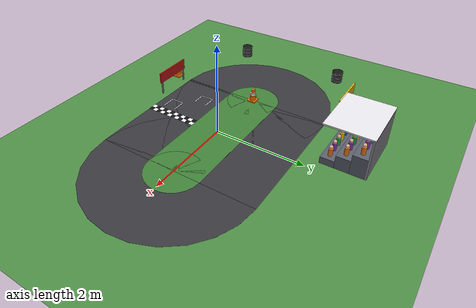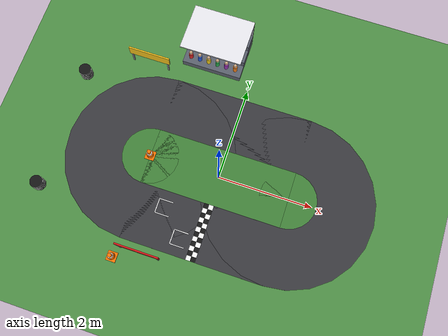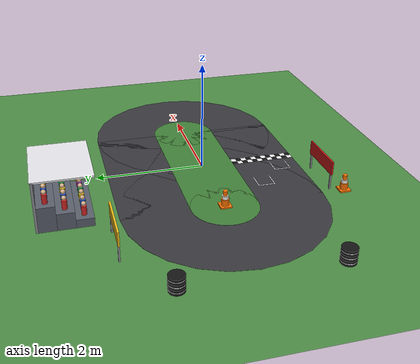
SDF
<sdf version="1.6">
 <world name="apex_circuit">
  <model name="ground_plane">
   <static>true</static>
   <link name="link">
    <collision name="collision">
     <geometry><plane><normal>0 0 1</normal><size>40 40</size></plane></geometry>
     <surface><friction><ode><mu>100</mu><mu2>50</mu2></ode></friction></surface>
    </collision>
    <visual name="visual">
     <geometry><plane><normal>0 0 1</normal><size>40 40</size></plane></geometry>
     <material><ambient>0.3 0.55 0.27 1</ambient><diffuse>0.3 0.55 0.27 1</diffuse></material>
    </visual>
   </link>
  </model>
  <model name="track_surface">
   <static>true</static>
   <link name="link">
    <visual name="asphalt_mid_v">
     <pose>0.0000 0.0000 0.0010 0 0 0.0000</pose>
     <geometry><box><size>3.0000 3.6000 0.0020</size></box></geometry>
     <material><ambient>0.22 0.22 0.24 1</ambient><diffuse>0.22 0.22 0.24 1</diffuse></material>
    </visual>
    <visual name="asphalt_e_v">
     <pose>1.5000 0.0000 0.0010 0 0 0.0000</pose>
     <geometry><cylinder><radius>1.8000</radius><length>0.0020</length></cylinder></geometry>
     <material><ambient>0.22 0.22 0.24 1</ambient><diffuse>0.22 0.22 0.24 1</diffuse></material>
    </visual>
    <visual name="asphalt_w_v">
     <pose>-1.5000 0.0000 0.0010 0 0 0.0000</pose>
     <geometry><cylinder><radius>1.8000</radius><length>0.0020</length></cylinder></geometry>
     <material><ambient>0.22 0.22 0.24 1</ambient><diffuse>0.22 0.22 0.24 1</diffuse></material>
    </visual>
    <visual name="infield_mid_v">
     <pose>0.0000 0.0000 0.0030 0 0 0.0000</pose>
     <geometry><box><size>3.0000 1.2000 0.0020</size></box></geometry>
     <material><ambient>0.25 0.5 0.22 1</ambient><diffuse>0.25 0.5 0.22 1</diffuse></material>
    </visual>
    <visual name="infield_e_v">
     <pose>1.5000 0.0000 0.0030 0 0 0.0000</pose>
     <geometry><cylinder><radius>0.6000</radius><length>0.0020</length></cylinder></geometry>
     <material><ambient>0.25 0.5 0.22 1</ambient><diffuse>0.25 0.5 0.22 1</diffuse></material>
    </visual>
    <visual name="infield_w_v">
     <pose>-1.5000 0.0000 0.0030 0 0 0.0000</pose>
     <geometry><cylinder><radius>0.6000</radius><length>0.0020</length></cylinder></geometry>
     <material><ambient>0.25 0.5 0.22 1</ambient><diffuse>0.25 0.5 0.22 1</diffuse></material>
    </visual>
    <visual name="line_0_0_v">
     <pose>-0.0500 -1.7500 0.0040 0 0 0.0000</pose>
     <geometry><box><size>0.1000 0.1000 0.0020</size></box></geometry>
     <material><ambient>0.95 0.95 0.95 1</ambient><diffuse>0.95 0.95 0.95 1</diffuse></material>
    </visual>
    <visual name="line_0_1_v">
     <pose>0.0500 -1.7500 0.0040 0 0 0.0000</pose>
     <geometry><box><size>0.1000 0.1000 0.0020</size></box></geometry>
     <material><ambient>0.08 0.08 0.08 1</ambient><diffuse>0.08 0.08 0.08 1</diffuse></material>
    </visual>
    <visual name="line_1_0_v">
     <pose>-0.0500 -1.6500 0.0040 0 0 0.0000</pose>
     <geometry><box><size>0.1000 0.1000 0.0020</size></box></geometry>
     <material><ambient>0.08 0.08 0.08 1</ambient><diffuse>0.08 0.08 0.08 1</diffuse></material>
    </visual>
    <visual name="line_1_1_v">
     <pose>0.0500 -1.6500 0.0040 0 0 0.0000</pose>
     <geometry><box><size>0.1000 0.1000 0.0020</size></box></geometry>
     <material><ambient>0.95 0.95 0.95 1</ambient><diffuse>0.95 0.95 0.95 1</diffuse></material>
    </visual>
    <visual name="line_2_0_v">
     <pose>-0.0500 -1.5500 0.0040 0 0 0.0000</pose>
     <geometry><box><size>0.1000 0.1000 0.0020</size></box></geometry>
     <material><ambient>0.95 0.95 0.95 1</ambient><diffuse>0.95 0.95 0.95 1</diffuse></material>
    </visual>
    <visual name="line_2_1_v">
     <pose>0.0500 -1.5500 0.0040 0 0 0.0000</pose>
     <geometry><box><size>0.1000 0.1000 0.0020</size></box></geometry>
     <material><ambient>0.08 0.08 0.08 1</ambient><diffuse>0.08 0.08 0.08 1</diffuse></material>
    </visual>
    <visual name="line_3_0_v">
     <pose>-0.0500 -1.4500 0.0040 0 0 0.0000</pose>
     <geometry><box><size>0.1000 0.1000 0.0020</size></box></geometry>
     <material><ambient>0.08 0.08 0.08 1</ambient><diffuse>0.08 0.08 0.08 1</diffuse></material>
    </visual>
    <visual name="line_3_1_v">
     <pose>0.0500 -1.4500 0.0040 0 0 0.0000</pose>
     <geometry><box><size>0.1000 0.1000 0.0020</size></box></geometry>
     <material><ambient>0.95 0.95 0.95 1</ambient><diffuse>0.95 0.95 0.95 1</diffuse></material>
    </visual>
    <visual name="line_4_0_v">
     <pose>-0.0500 -1.3500 0.0040 0 0 0.0000</pose>
     <geometry><box><size>0.1000 0.1000 0.0020</size></box></geometry>
     <material><ambient>0.95 0.95 0.95 1</ambient><diffuse>0.95 0.95 0.95 1</diffuse></material>
    </visual>
    <visual name="line_4_1_v">
     <pose>0.0500 -1.3500 0.0040 0 0 0.0000</pose>
     <geometry><box><size>0.1000 0.1000 0.0020</size></box></geometry>
     <material><ambient>0.08 0.08 0.08 1</ambient><diffuse>0.08 0.08 0.08 1</diffuse></material>
    </visual>
    <visual name="line_5_0_v">
     <pose>-0.0500 -1.2500 0.0040 0 0 0.0000</pose>
     <geometry><box><size>0.1000 0.1000 0.0020</size></box></geometry>
     <material><ambient>0.08 0.08 0.08 1</ambient><diffuse>0.08 0.08 0.08 1</diffuse></material>
    </visual>
    <visual name="line_5_1_v">
     <pose>0.0500 -1.2500 0.0040 0 0 0.0000</pose>
     <geometry><box><size>0.1000 0.1000 0.0020</size></box></geometry>
     <material><ambient>0.95 0.95 0.95 1</ambient><diffuse>0.95 0.95 0.95 1</diffuse></material>
    </visual>
    <visual name="line_6_0_v">
     <pose>-0.0500 -1.1500 0.0040 0 0 0.0000</pose>
     <geometry><box><size>0.1000 0.1000 0.0020</size></box></geometry>
     <material><ambient>0.95 0.95 0.95 1</ambient><diffuse>0.95 0.95 0.95 1</diffuse></material>
    </visual>
    <visual name="line_6_1_v">
     <pose>0.0500 -1.1500 0.0040 0 0 0.0000</pose>
     <geometry><box><size>0.1000 0.1000 0.0020</size></box></geometry>
     <material><ambient>0.08 0.08 0.08 1</ambient><diffuse>0.08 0.08 0.08 1</diffuse></material>
    </visual>
    <visual name="line_7_0_v">
     <pose>-0.0500 -1.0500 0.0040 0 0 0.0000</pose>
     <geometry><box><size>0.1000 0.1000 0.0020</size></box></geometry>
     <material><ambient>0.08 0.08 0.08 1</ambient><diffuse>0.08 0.08 0.08 1</diffuse></material>
    </visual>
    <visual name="line_7_1_v">
     <pose>0.0500 -1.0500 0.0040 0 0 0.0000</pose>
     <geometry><box><size>0.1000 0.1000 0.0020</size></box></geometry>
     <material><ambient>0.95 0.95 0.95 1</ambient><diffuse>0.95 0.95 0.95 1</diffuse></material>
    </visual>
    <visual name="line_8_0_v">
     <pose>-0.0500 -0.9500 0.0040 0 0 0.0000</pose>
     <geometry><box><size>0.1000 0.1000 0.0020</size></box></geometry>
     <material><ambient>0.95 0.95 0.95 1</ambient><diffuse>0.95 0.95 0.95 1</diffuse></material>
    </visual>
    <visual name="line_8_1_v">
     <pose>0.0500 -0.9500 0.0040 0 0 0.0000</pose>
     <geometry><box><size>0.1000 0.1000 0.0020</size></box></geometry>
     <material><ambient>0.08 0.08 0.08 1</ambient><diffuse>0.08 0.08 0.08 1</diffuse></material>
    </visual>
    <visual name="line_9_0_v">
     <pose>-0.0500 -0.8500 0.0040 0 0 0.0000</pose>
     <geometry><box><size>0.1000 0.1000 0.0020</size></box></geometry>
     <material><ambient>0.08 0.08 0.08 1</ambient><diffuse>0.08 0.08 0.08 1</diffuse></material>
    </visual>
    <visual name="line_9_1_v">
     <pose>0.0500 -0.8500 0.0040 0 0 0.0000</pose>
     <geometry><box><size>0.1000 0.1000 0.0020</size></box></geometry>
     <material><ambient>0.95 0.95 0.95 1</ambient><diffuse>0.95 0.95 0.95 1</diffuse></material>
    </visual>
    <visual name="line_10_0_v">
     <pose>-0.0500 -0.7500 0.0040 0 0 0.0000</pose>
     <geometry><box><size>0.1000 0.1000 0.0020</size></box></geometry>
     <material><ambient>0.95 0.95 0.95 1</ambient><diffuse>0.95 0.95 0.95 1</diffuse></material>
    </visual>
    <visual name="line_10_1_v">
     <pose>0.0500 -0.7500 0.0040 0 0 0.0000</pose>
     <geometry><box><size>0.1000 0.1000 0.0020</size></box></geometry>
     <material><ambient>0.08 0.08 0.08 1</ambient><diffuse>0.08 0.08 0.08 1</diffuse></material>
    </visual>
    <visual name="line_11_0_v">
     <pose>-0.0500 -0.6500 0.0040 0 0 0.0000</pose>
     <geometry><box><size>0.1000 0.1000 0.0020</size></box></geometry>
     <material><ambient>0.08 0.08 0.08 1</ambient><diffuse>0.08 0.08 0.08 1</diffuse></material>
    </visual>
    <visual name="line_11_1_v">
     <pose>0.0500 -0.6500 0.0040 0 0 0.0000</pose>
     <geometry><box><size>0.1000 0.1000 0.0020</size></box></geometry>
     <material><ambient>0.95 0.95 0.95 1</ambient><diffuse>0.95 0.95 0.95 1</diffuse></material>
    </visual>
    <visual name="grid_auto_back_v">
     <pose>-0.5000 -1.4500 0.0040 0 0 0.0000</pose>
     <geometry><box><size>0.0200 0.3000 0.0020</size></box></geometry>
     <material><ambient>0.95 0.95 0.95 1</ambient><diffuse>0.95 0.95 0.95 1</diffuse></material>
    </visual>
    <visual name="grid_auto_-1_v">
     <pose>-0.3500 -1.6000 0.0040 0 0 0.0000</pose>
     <geometry><box><size>0.3000 0.0200 0.0020</size></box></geometry>
     <material><ambient>0.95 0.95 0.95 1</ambient><diffuse>0.95 0.95 0.95 1</diffuse></material>
    </visual>
    <visual name="grid_auto_1_v">
     <pose>-0.3500 -1.3000 0.0040 0 0 0.0000</pose>
     <geometry><box><size>0.3000 0.0200 0.0020</size></box></geometry>
     <material><ambient>0.95 0.95 0.95 1</ambient><diffuse>0.95 0.95 0.95 1</diffuse></material>
    </visual>
    <visual name="grid_player_back_v">
     <pose>-1.0000 -0.9500 0.0040 0 0 0.0000</pose>
     <geometry><box><size>0.0200 0.3000 0.0020</size></box></geometry>
     <material><ambient>0.95 0.95 0.95 1</ambient><diffuse>0.95 0.95 0.95 1</diffuse></material>
    </visual>
    <visual name="grid_player_-1_v">
     <pose>-0.8500 -1.1000 0.0040 0 0 0.0000</pose>
     <geometry><box><size>0.3000 0.0200 0.0020</size></box></geometry>
     <material><ambient>0.95 0.95 0.95 1</ambient><diffuse>0.95 0.95 0.95 1</diffuse></material>
    </visual>
    <visual name="grid_player_1_v">
     <pose>-0.8500 -0.8000 0.0040 0 0 0.0000</pose>
     <geometry><box><size>0.3000 0.0200 0.0020</size></box></geometry>
     <material><ambient>0.95 0.95 0.95 1</ambient><diffuse>0.95 0.95 0.95 1</diffuse></material>
    </visual>
   </link>
  </model>
  <model name="grandstand_0">
   <static>true</static>
   <pose>-0.9000 0.0000 0 0 0 0.0000</pose>
   <link name="link">
    <visual name="row_0_v">
     <pose>0.0000 2.3500 0.0750 0 0 0.0000</pose>
     <geometry><box><size>1.3000 0.3000 0.1500</size></box></geometry>
     <material><ambient>0.35 0.37 0.42 1</ambient><diffuse>0.35 0.37 0.42 1</diffuse></material>
    </visual>
    <collision name="row_0_c">
     <pose>0.0000 2.3500 0.0750 0 0 0.0000</pose>
     <geometry><box><size>1.3000 0.3000 0.1500</size></box></geometry>
    </collision>
    <visual name="fan_0_0_body_v">
     <pose>-0.5000 2.3500 0.2300 0 0 0.0000</pose>
     <geometry><cylinder><radius>0.0450</radius><length>0.1600</length></cylinder></geometry>
     <material><ambient>0.85 0.15 0.15 1</ambient><diffuse>0.85 0.15 0.15 1</diffuse></material>
    </visual>
    <visual name="fan_0_0_head_v">
     <pose>-0.5000 2.3500 0.3500 0 0 0.0000</pose>
     <geometry><sphere><radius>0.0400</radius></sphere></geometry>
     <material><ambient>0.85 0.7 0.55 1</ambient><diffuse>0.85 0.7 0.55 1</diffuse></material>
    </visual>
    <visual name="fan_0_1_body_v">
     <pose>-0.3000 2.3500 0.2300 0 0 0.0000</pose>
     <geometry><cylinder><radius>0.0450</radius><length>0.1600</length></cylinder></geometry>
     <material><ambient>0.15 0.35 0.85 1</ambient><diffuse>0.15 0.35 0.85 1</diffuse></material>
    </visual>
    <visual name="fan_0_1_head_v">
     <pose>-0.3000 2.3500 0.3500 0 0 0.0000</pose>
     <geometry><sphere><radius>0.0400</radius></sphere></geometry>
     <material><ambient>0.85 0.7 0.55 1</ambient><diffuse>0.85 0.7 0.55 1</diffuse></material>
    </visual>
    <visual name="fan_0_2_body_v">
     <pose>-0.1000 2.3500 0.2300 0 0 0.0000</pose>
     <geometry><cylinder><radius>0.0450</radius><length>0.1600</length></cylinder></geometry>
     <material><ambient>0.95 0.8 0.1 1</ambient><diffuse>0.95 0.8 0.1 1</diffuse></material>
    </visual>
    <visual name="fan_0_2_head_v">
     <pose>-0.1000 2.3500 0.3500 0 0 0.0000</pose>
     <geometry><sphere><radius>0.0400</radius></sphere></geometry>
     <material><ambient>0.85 0.7 0.55 1</ambient><diffuse>0.85 0.7 0.55 1</diffuse></material>
    </visual>
    <visual name="fan_0_3_body_v">
     <pose>0.1000 2.3500 0.2300 0 0 0.0000</pose>
     <geometry><cylinder><radius>0.0450</radius><length>0.1600</length></cylinder></geometry>
     <material><ambient>0.15 0.65 0.3 1</ambient><diffuse>0.15 0.65 0.3 1</diffuse></material>
    </visual>
    <visual name="fan_0_3_head_v">
     <pose>0.1000 2.3500 0.3500 0 0 0.0000</pose>
     <geometry><sphere><radius>0.0400</radius></sphere></geometry>
     <material><ambient>0.85 0.7 0.55 1</ambient><diffuse>0.85 0.7 0.55 1</diffuse></material>
    </visual>
    <visual name="fan_0_4_body_v">
     <pose>0.3000 2.3500 0.2300 0 0 0.0000</pose>
     <geometry><cylinder><radius>0.0450</radius><length>0.1600</length></cylinder></geometry>
     <material><ambient>0.6 0.2 0.7 1</ambient><diffuse>0.6 0.2 0.7 1</diffuse></material>
    </visual>
    <visual name="fan_0_4_head_v">
     <pose>0.3000 2.3500 0.3500 0 0 0.0000</pose>
     <geometry><sphere><radius>0.0400</radius></sphere></geometry>
     <material><ambient>0.85 0.7 0.55 1</ambient><diffuse>0.85 0.7 0.55 1</diffuse></material>
    </visual>
    <visual name="fan_0_5_body_v">
     <pose>0.5000 2.3500 0.2300 0 0 0.0000</pose>
     <geometry><cylinder><radius>0.0450</radius><length>0.1600</length></cylinder></geometry>
     <material><ambient>0.95 0.5 0.1 1</ambient><diffuse>0.95 0.5 0.1 1</diffuse></material>
    </visual>
    <visual name="fan_0_5_head_v">
     <pose>0.5000 2.3500 0.3500 0 0 0.0000</pose>
     <geometry><sphere><radius>0.0400</radius></sphere></geometry>
     <material><ambient>0.85 0.7 0.55 1</ambient><diffuse>0.85 0.7 0.55 1</diffuse></material>
    </visual>
    <visual name="row_1_v">
     <pose>0.0000 2.6500 0.1500 0 0 0.0000</pose>
     <geometry><box><size>1.3000 0.3000 0.3000</size></box></geometry>
     <material><ambient>0.35 0.37 0.42 1</ambient><diffuse>0.35 0.37 0.42 1</diffuse></material>
    </visual>
    <collision name="row_1_c">
     <pose>0.0000 2.6500 0.1500 0 0 0.0000</pose>
     <geometry><box><size>1.3000 0.3000 0.3000</size></box></geometry>
    </collision>
    <visual name="fan_1_0_body_v">
     <pose>-0.5000 2.6500 0.3800 0 0 0.0000</pose>
     <geometry><cylinder><radius>0.0450</radius><length>0.1600</length></cylinder></geometry>
     <material><ambient>0.85 0.15 0.15 1</ambient><diffuse>0.85 0.15 0.15 1</diffuse></material>
    </visual>
    <visual name="fan_1_0_head_v">
     <pose>-0.5000 2.6500 0.5000 0 0 0.0000</pose>
     <geometry><sphere><radius>0.0400</radius></sphere></geometry>
     <material><ambient>0.85 0.7 0.55 1</ambient><diffuse>0.85 0.7 0.55 1</diffuse></material>
    </visual>
    <visual name="fan_1_1_body_v">
     <pose>-0.3000 2.6500 0.3800 0 0 0.0000</pose>
     <geometry><cylinder><radius>0.0450</radius><length>0.1600</length></cylinder></geometry>
     <material><ambient>0.15 0.35 0.85 1</ambient><diffuse>0.15 0.35 0.85 1</diffuse></material>
    </visual>
    <visual name="fan_1_1_head_v">
     <pose>-0.3000 2.6500 0.5000 0 0 0.0000</pose>
     <geometry><sphere><radius>0.0400</radius></sphere></geometry>
     <material><ambient>0.85 0.7 0.55 1</ambient><diffuse>0.85 0.7 0.55 1</diffuse></material>
    </visual>
    <visual name="fan_1_2_body_v">
     <pose>-0.1000 2.6500 0.3800 0 0 0.0000</pose>
     <geometry><cylinder><radius>0.0450</radius><length>0.1600</length></cylinder></geometry>
     <material><ambient>0.95 0.8 0.1 1</ambient><diffuse>0.95 0.8 0.1 1</diffuse></material>
    </visual>
    <visual name="fan_1_2_head_v">
     <pose>-0.1000 2.6500 0.5000 0 0 0.0000</pose>
     <geometry><sphere><radius>0.0400</radius></sphere></geometry>
     <material><ambient>0.85 0.7 0.55 1</ambient><diffuse>0.85 0.7 0.55 1</diffuse></material>
    </visual>
    <visual name="fan_1_3_body_v">
     <pose>0.1000 2.6500 0.3800 0 0 0.0000</pose>
     <geometry><cylinder><radius>0.0450</radius><length>0.1600</length></cylinder></geometry>
     <material><ambient>0.15 0.65 0.3 1</ambient><diffuse>0.15 0.65 0.3 1</diffuse></material>
    </visual>
    <visual name="fan_1_3_head_v">
     <pose>0.1000 2.6500 0.5000 0 0 0.0000</pose>
     <geometry><sphere><radius>0.0400</radius></sphere></geometry>
     <material><ambient>0.85 0.7 0.55 1</ambient><diffuse>0.85 0.7 0.55 1</diffuse></material>
    </visual>
    <visual name="fan_1_4_body_v">
     <pose>0.3000 2.6500 0.3800 0 0 0.0000</pose>
     <geometry><cylinder><radius>0.0450</radius><length>0.1600</length></cylinder></geometry>
     <material><ambient>0.6 0.2 0.7 1</ambient><diffuse>0.6 0.2 0.7 1</diffuse></material>
    </visual>
    <visual name="fan_1_4_head_v">
     <pose>0.3000 2.6500 0.5000 0 0 0.0000</pose>
     <geometry><sphere><radius>0.0400</radius></sphere></geometry>
     <material><ambient>0.85 0.7 0.55 1</ambient><diffuse>0.85 0.7 0.55 1</diffuse></material>
    </visual>
    <visual name="fan_1_5_body_v">
     <pose>0.5000 2.6500 0.3800 0 0 0.0000</pose>
     <geometry><cylinder><radius>0.0450</radius><length>0.1600</length></cylinder></geometry>
     <material><ambient>0.95 0.5 0.1 1</ambient><diffuse>0.95 0.5 0.1 1</diffuse></material>
    </visual>
    <visual name="fan_1_5_head_v">
     <pose>0.5000 2.6500 0.5000 0 0 0.0000</pose>
     <geometry><sphere><radius>0.0400</radius></sphere></geometry>
     <material><ambient>0.85 0.7 0.55 1</ambient><diffuse>0.85 0.7 0.55 1</diffuse></material>
    </visual>
    <visual name="row_2_v">
     <pose>0.0000 2.9500 0.2250 0 0 0.0000</pose>
     <geometry><box><size>1.3000 0.3000 0.4500</size></box></geometry>
     <material><ambient>0.35 0.37 0.42 1</ambient><diffuse>0.35 0.37 0.42 1</diffuse></material>
    </visual>
    <collision name="row_2_c">
     <pose>0.0000 2.9500 0.2250 0 0 0.0000</pose>
     <geometry><box><size>1.3000 0.3000 0.4500</size></box></geometry>
    </collision>
    <visual name="fan_2_0_body_v">
     <pose>-0.5000 2.9500 0.5300 0 0 0.0000</pose>
     <geometry><cylinder><radius>0.0450</radius><length>0.1600</length></cylinder></geometry>
     <material><ambient>0.85 0.15 0.15 1</ambient><diffuse>0.85 0.15 0.15 1</diffuse></material>
    </visual>
    <visual name="fan_2_0_head_v">
     <pose>-0.5000 2.9500 0.6500 0 0 0.0000</pose>
     <geometry><sphere><radius>0.0400</radius></sphere></geometry>
     <material><ambient>0.85 0.7 0.55 1</ambient><diffuse>0.85 0.7 0.55 1</diffuse></material>
    </visual>
    <visual name="fan_2_1_body_v">
     <pose>-0.3000 2.9500 0.5300 0 0 0.0000</pose>
     <geometry><cylinder><radius>0.0450</radius><length>0.1600</length></cylinder></geometry>
     <material><ambient>0.15 0.35 0.85 1</ambient><diffuse>0.15 0.35 0.85 1</diffuse></material>
    </visual>
    <visual name="fan_2_1_head_v">
     <pose>-0.3000 2.9500 0.6500 0 0 0.0000</pose>
     <geometry><sphere><radius>0.0400</radius></sphere></geometry>
     <material><ambient>0.85 0.7 0.55 1</ambient><diffuse>0.85 0.7 0.55 1</diffuse></material>
    </visual>
    <visual name="fan_2_2_body_v">
     <pose>-0.1000 2.9500 0.5300 0 0 0.0000</pose>
     <geometry><cylinder><radius>0.0450</radius><length>0.1600</length></cylinder></geometry>
     <material><ambient>0.95 0.8 0.1 1</ambient><diffuse>0.95 0.8 0.1 1</diffuse></material>
    </visual>
    <visual name="fan_2_2_head_v">
     <pose>-0.1000 2.9500 0.6500 0 0 0.0000</pose>
     <geometry><sphere><radius>0.0400</radius></sphere></geometry>
     <material><ambient>0.85 0.7 0.55 1</ambient><diffuse>0.85 0.7 0.55 1</diffuse></material>
    </visual>
    <visual name="fan_2_3_body_v">
     <pose>0.1000 2.9500 0.5300 0 0 0.0000</pose>
     <geometry><cylinder><radius>0.0450</radius><length>0.1600</length></cylinder></geometry>
     <material><ambient>0.15 0.65 0.3 1</ambient><diffuse>0.15 0.65 0.3 1</diffuse></material>
    </visual>
    <visual name="fan_2_3_head_v">
     <pose>0.1000 2.9500 0.6500 0 0 0.0000</pose>
     <geometry><sphere><radius>0.0400</radius></sphere></geometry>
     <material><ambient>0.85 0.7 0.55 1</ambient><diffuse>0.85 0.7 0.55 1</diffuse></material>
    </visual>
    <visual name="fan_2_4_body_v">
     <pose>0.3000 2.9500 0.5300 0 0 0.0000</pose>
     <geometry><cylinder><radius>0.0450</radius><length>0.1600</length></cylinder></geometry>
     <material><ambient>0.6 0.2 0.7 1</ambient><diffuse>0.6 0.2 0.7 1</diffuse></material>
    </visual>
    <visual name="fan_2_4_head_v">
     <pose>0.3000 2.9500 0.6500 0 0 0.0000</pose>
     <geometry><sphere><radius>0.0400</radius></sphere></geometry>
     <material><ambient>0.85 0.7 0.55 1</ambient><diffuse>0.85 0.7 0.55 1</diffuse></material>
    </visual>
    <visual name="fan_2_5_body_v">
     <pose>0.5000 2.9500 0.5300 0 0 0.0000</pose>
     <geometry><cylinder><radius>0.0450</radius><length>0.1600</length></cylinder></geometry>
     <material><ambient>0.95 0.5 0.1 1</ambient><diffuse>0.95 0.5 0.1 1</diffuse></material>
    </visual>
    <visual name="fan_2_5_head_v">
     <pose>0.5000 2.9500 0.6500 0 0 0.0000</pose>
     <geometry><sphere><radius>0.0400</radius></sphere></geometry>
     <material><ambient>0.85 0.7 0.55 1</ambient><diffuse>0.85 0.7 0.55 1</diffuse></material>
    </visual>
    <visual name="back_v">
     <pose>0.0000 3.1200 0.4500 0 0 0.0000</pose>
     <geometry><box><size>1.3000 0.0400 0.9000</size></box></geometry>
     <material><ambient>0.55 0.55 0.58 1</ambient><diffuse>0.55 0.55 0.58 1</diffuse></material>
    </visual>
    <collision name="back_c">
     <pose>0.0000 3.1200 0.4500 0 0 0.0000</pose>
     <geometry><box><size>1.3000 0.0400 0.9000</size></box></geometry>
    </collision>
    <visual name="roof_v">
     <pose>0.0000 2.6500 0.9000 0 0 0.0000</pose>
     <geometry><box><size>1.3000 1.0000 0.0300</size></box></geometry>
     <material><ambient>0.9 0.9 0.92 1</ambient><diffuse>0.9 0.9 0.92 1</diffuse></material>
    </visual>
    <collision name="roof_c">
     <pose>0.0000 2.6500 0.9000 0 0 0.0000</pose>
     <geometry><box><size>1.3000 1.0000 0.0300</size></box></geometry>
    </collision>
   </link>
  </model>
  <model name="banner_0">
   <static>true</static>
   <pose>-1.0000 -1.9700 0 0 0 0.0000</pose>
   <link name="link">
    <visual name="board_v">
     <pose>0.0000 0.0000 0.4200 0 0 0.0000</pose>
     <geometry><box><size>0.9000 0.0300 0.2500</size></box></geometry>
     <material><ambient>0.85 0.1 0.1 1</ambient><diffuse>0.85 0.1 0.1 1</diffuse></material>
    </visual>
    <collision name="board_c">
     <pose>0.0000 0.0000 0.4200 0 0 0.0000</pose>
     <geometry><box><size>0.9000 0.0300 0.2500</size></box></geometry>
    </collision>
    <visual name="leg_a_v">
     <pose>-0.4000 0.0000 0.1500 0 0 0.0000</pose>
     <geometry><box><size>0.0300 0.0300 0.3000</size></box></geometry>
     <material><ambient>0.55 0.55 0.58 1</ambient><diffuse>0.55 0.55 0.58 1</diffuse></material>
    </visual>
    <collision name="leg_a_c">
     <pose>-0.4000 0.0000 0.1500 0 0 0.0000</pose>
     <geometry><box><size>0.0300 0.0300 0.3000</size></box></geometry>
    </collision>
    <visual name="leg_b_v">
     <pose>0.4000 0.0000 0.1500 0 0 0.0000</pose>
     <geometry><box><size>0.0300 0.0300 0.3000</size></box></geometry>
     <material><ambient>0.55 0.55 0.58 1</ambient><diffuse>0.55 0.55 0.58 1</diffuse></material>
    </visual>
    <collision name="leg_b_c">
     <pose>0.4000 0.0000 0.1500 0 0 0.0000</pose>
     <geometry><box><size>0.0300 0.0300 0.3000</size></box></geometry>
    </collision>
   </link>
  </model>
  <model name="banner_2">
   <static>true</static>
   <pose>-2.2000 1.9700 0 0 0 0.0000</pose>
   <link name="link">
    <visual name="board_v">
     <pose>0.0000 0.0000 0.4200 0 0 0.0000</pose>
     <geometry><box><size>0.9000 0.0300 0.2500</size></box></geometry>
     <material><ambient>0.95 0.75 0.1 1</ambient><diffuse>0.95 0.75 0.1 1</diffuse></material>
    </visual>
    <collision name="board_c">
     <pose>0.0000 0.0000 0.4200 0 0 0.0000</pose>
     <geometry><box><size>0.9000 0.0300 0.2500</size></box></geometry>
    </collision>
    <visual name="leg_a_v">
     <pose>-0.4000 0.0000 0.1500 0 0 0.0000</pose>
     <geometry><box><size>0.0300 0.0300 0.3000</size></box></geometry>
     <material><ambient>0.55 0.55 0.58 1</ambient><diffuse>0.55 0.55 0.58 1</diffuse></material>
    </visual>
    <collision name="leg_a_c">
     <pose>-0.4000 0.0000 0.1500 0 0 0.0000</pose>
     <geometry><box><size>0.0300 0.0300 0.3000</size></box></geometry>
    </collision>
    <visual name="leg_b_v">
     <pose>0.4000 0.0000 0.1500 0 0 0.0000</pose>
     <geometry><box><size>0.0300 0.0300 0.3000</size></box></geometry>
     <material><ambient>0.55 0.55 0.58 1</ambient><diffuse>0.55 0.55 0.58 1</diffuse></material>
    </visual>
    <collision name="leg_b_c">
     <pose>0.4000 0.0000 0.1500 0 0 0.0000</pose>
     <geometry><box><size>0.0300 0.0300 0.3000</size></box></geometry>
    </collision>
   </link>
  </model>
  <model name="cone_0">
   <static>true</static>
   <pose>-1.5000 0.0000 0 0 0 0.0000</pose>
   <link name="link">
    <visual name="cone0_base_v">
     <pose>0.0000 0.0000 0.0150 0 0 0.0000</pose>
     <geometry><box><size>0.2000 0.2000 0.0300</size></box></geometry>
     <material><ambient>1.0 0.45 0.0 1</ambient><diffuse>1.0 0.45 0.0 1</diffuse></material>
    </visual>
    <collision name="cone0_base_c">
     <pose>0.0000 0.0000 0.0150 0 0 0.0000</pose>
     <geometry><box><size>0.2000 0.2000 0.0300</size></box></geometry>
    </collision>
    <visual name="cone0_low_v">
     <pose>0.0000 0.0000 0.0900 0 0 0.0000</pose>
     <geometry><cylinder><radius>0.0700</radius><length>0.1200</length></cylinder></geometry>
     <material><ambient>1.0 0.45 0.0 1</ambient><diffuse>1.0 0.45 0.0 1</diffuse></material>
    </visual>
    <collision name="cone0_low_c">
     <pose>0.0000 0.0000 0.0900 0 0 0.0000</pose>
     <geometry><cylinder><radius>0.0700</radius><length>0.1200</length></cylinder></geometry>
    </collision>
    <visual name="cone0_band_v">
     <pose>0.0000 0.0000 0.1800 0 0 0.0000</pose>
     <geometry><cylinder><radius>0.0550</radius><length>0.0600</length></cylinder></geometry>
     <material><ambient>0.95 0.95 0.95 1</ambient><diffuse>0.95 0.95 0.95 1</diffuse></material>
    </visual>
    <collision name="cone0_band_c">
     <pose>0.0000 0.0000 0.1800 0 0 0.0000</pose>
     <geometry><cylinder><radius>0.0550</radius><length>0.0600</length></cylinder></geometry>
    </collision>
    <visual name="cone0_top_v">
     <pose>0.0000 0.0000 0.2550 0 0 0.0000</pose>
     <geometry><cylinder><radius>0.0400</radius><length>0.0900</length></cylinder></geometry>
     <material><ambient>1.0 0.45 0.0 1</ambient><diffuse>1.0 0.45 0.0 1</diffuse></material>
    </visual>
    <collision name="cone0_top_c">
     <pose>0.0000 0.0000 0.2550 0 0 0.0000</pose>
     <geometry><cylinder><radius>0.0400</radius><length>0.0900</length></cylinder></geometry>
    </collision>
   </link>
  </model>
  <model name="cone_2">
   <static>true</static>
   <pose>-1.5000 -2.2000 0 0 0 0.0000</pose>
   <link name="link">
    <visual name="cone2_base_v">
     <pose>0.0000 0.0000 0.0150 0 0 0.0000</pose>
     <geometry><box><size>0.2000 0.2000 0.0300</size></box></geometry>
     <material><ambient>1.0 0.45 0.0 1</ambient><diffuse>1.0 0.45 0.0 1</diffuse></material>
    </visual>
    <collision name="cone2_base_c">
     <pose>0.0000 0.0000 0.0150 0 0 0.0000</pose>
     <geometry><box><size>0.2000 0.2000 0.0300</size></box></geometry>
    </collision>
    <visual name="cone2_low_v">
     <pose>0.0000 0.0000 0.0900 0 0 0.0000</pose>
     <geometry><cylinder><radius>0.0700</radius><length>0.1200</length></cylinder></geometry>
     <material><ambient>1.0 0.45 0.0 1</ambient><diffuse>1.0 0.45 0.0 1</diffuse></material>
    </visual>
    <collision name="cone2_low_c">
     <pose>0.0000 0.0000 0.0900 0 0 0.0000</pose>
     <geometry><cylinder><radius>0.0700</radius><length>0.1200</length></cylinder></geometry>
    </collision>
    <visual name="cone2_band_v">
     <pose>0.0000 0.0000 0.1800 0 0 0.0000</pose>
     <geometry><cylinder><radius>0.0550</radius><length>0.0600</length></cylinder></geometry>
     <material><ambient>0.95 0.95 0.95 1</ambient><diffuse>0.95 0.95 0.95 1</diffuse></material>
    </visual>
    <collision name="cone2_band_c">
     <pose>0.0000 0.0000 0.1800 0 0 0.0000</pose>
     <geometry><cylinder><radius>0.0550</radius><length>0.0600</length></cylinder></geometry>
    </collision>
    <visual name="cone2_top_v">
     <pose>0.0000 0.0000 0.2550 0 0 0.0000</pose>
     <geometry><cylinder><radius>0.0400</radius><length>0.0900</length></cylinder></geometry>
     <material><ambient>1.0 0.45 0.0 1</ambient><diffuse>1.0 0.45 0.0 1</diffuse></material>
    </visual>
    <collision name="cone2_top_c">
     <pose>0.0000 0.0000 0.2550 0 0 0.0000</pose>
     <geometry><cylinder><radius>0.0400</radius><length>0.0900</length></cylinder></geometry>
    </collision>
   </link>
  </model>
  <model name="tyre_stack_0">
   <static>true</static>
   <pose>-3.4500 -1.3000 0 0 0 0.0000</pose>
   <link name="link">
    <visual name="ts0_t0_v">
     <pose>0.0000 0.0000 0.0450 0 0 0.0000</pose>
     <geometry><cylinder><radius>0.1300</radius><length>0.0900</length></cylinder></geometry>
     <material><ambient>0.08 0.08 0.08 1</ambient><diffuse>0.08 0.08 0.08 1</diffuse></material>
    </visual>
    <collision name="ts0_t0_c">
     <pose>0.0000 0.0000 0.0450 0 0 0.0000</pose>
     <geometry><cylinder><radius>0.1300</radius><length>0.0900</length></cylinder></geometry>
    </collision>
    <visual name="ts0_s0_v">
     <pose>0.0000 0.0000 0.0450 0 0 0.0000</pose>
     <geometry><cylinder><radius>0.1310</radius><length>0.0120</length></cylinder></geometry>
     <material><ambient>0.95 0.95 0.95 1</ambient><diffuse>0.95 0.95 0.95 1</diffuse></material>
    </visual>
    <visual name="ts0_t1_v">
     <pose>0.0000 0.0000 0.1350 0 0 0.0000</pose>
     <geometry><cylinder><radius>0.1300</radius><length>0.0900</length></cylinder></geometry>
     <material><ambient>0.08 0.08 0.08 1</ambient><diffuse>0.08 0.08 0.08 1</diffuse></material>
    </visual>
    <collision name="ts0_t1_c">
     <pose>0.0000 0.0000 0.1350 0 0 0.0000</pose>
     <geometry><cylinder><radius>0.1300</radius><length>0.0900</length></cylinder></geometry>
    </collision>
    <visual name="ts0_s1_v">
     <pose>0.0000 0.0000 0.1350 0 0 0.0000</pose>
     <geometry><cylinder><radius>0.1310</radius><length>0.0120</length></cylinder></geometry>
     <material><ambient>0.95 0.95 0.95 1</ambient><diffuse>0.95 0.95 0.95 1</diffuse></material>
    </visual>
    <visual name="ts0_t2_v">
     <pose>0.0000 0.0000 0.2250 0 0 0.0000</pose>
     <geometry><cylinder><radius>0.1300</radius><length>0.0900</length></cylinder></geometry>
     <material><ambient>0.08 0.08 0.08 1</ambient><diffuse>0.08 0.08 0.08 1</diffuse></material>
    </visual>
    <collision name="ts0_t2_c">
     <pose>0.0000 0.0000 0.2250 0 0 0.0000</pose>
     <geometry><cylinder><radius>0.1300</radius><length>0.0900</length></cylinder></geometry>
    </collision>
    <visual name="ts0_s2_v">
     <pose>0.0000 0.0000 0.2250 0 0 0.0000</pose>
     <geometry><cylinder><radius>0.1310</radius><length>0.0120</length></cylinder></geometry>
     <material><ambient>0.95 0.95 0.95 1</ambient><diffuse>0.95 0.95 0.95 1</diffuse></material>
    </visual>
   </link>
  </model>
  <model name="tyre_stack_1">
   <static>true</static>
   <pose>-3.4500 1.3000 0 0 0 0.0000</pose>
   <link name="link">
    <visual name="ts1_t0_v">
     <pose>0.0000 0.0000 0.0450 0 0 0.0000</pose>
     <geometry><cylinder><radius>0.1300</radius><length>0.0900</length></cylinder></geometry>
     <material><ambient>0.08 0.08 0.08 1</ambient><diffuse>0.08 0.08 0.08 1</diffuse></material>
    </visual>
    <collision name="ts1_t0_c">
     <pose>0.0000 0.0000 0.0450 0 0 0.0000</pose>
     <geometry><cylinder><radius>0.1300</radius><length>0.0900</length></cylinder></geometry>
    </collision>
    <visual name="ts1_s0_v">
     <pose>0.0000 0.0000 0.0450 0 0 0.0000</pose>
     <geometry><cylinder><radius>0.1310</radius><length>0.0120</length></cylinder></geometry>
     <material><ambient>0.95 0.95 0.95 1</ambient><diffuse>0.95 0.95 0.95 1</diffuse></material>
    </visual>
    <visual name="ts1_t1_v">
     <pose>0.0000 0.0000 0.1350 0 0 0.0000</pose>
     <geometry><cylinder><radius>0.1300</radius><length>0.0900</length></cylinder></geometry>
     <material><ambient>0.08 0.08 0.08 1</ambient><diffuse>0.08 0.08 0.08 1</diffuse></material>
    </visual>
    <collision name="ts1_t1_c">
     <pose>0.0000 0.0000 0.1350 0 0 0.0000</pose>
     <geometry><cylinder><radius>0.1300</radius><length>0.0900</length></cylinder></geometry>
    </collision>
    <visual name="ts1_s1_v">
     <pose>0.0000 0.0000 0.1350 0 0 0.0000</pose>
     <geometry><cylinder><radius>0.1310</radius><length>0.0120</length></cylinder></geometry>
     <material><ambient>0.95 0.95 0.95 1</ambient><diffuse>0.95 0.95 0.95 1</diffuse></material>
    </visual>
    <visual name="ts1_t2_v">
     <pose>0.0000 0.0000 0.2250 0 0 0.0000</pose>
     <geometry><cylinder><radius>0.1300</radius><length>0.0900</length></cylinder></geometry>
     <material><ambient>0.08 0.08 0.08 1</ambient><diffuse>0.08 0.08 0.08 1</diffuse></material>
    </visual>
    <collision name="ts1_t2_c">
     <pose>0.0000 0.0000 0.2250 0 0 0.0000</pose>
     <geometry><cylinder><radius>0.1300</radius><length>0.0900</length></cylinder></geometry>
    </collision>
    <visual name="ts1_s2_v">
     <pose>0.0000 0.0000 0.2250 0 0 0.0000</pose>
     <geometry><cylinder><radius>0.1310</radius><length>0.0120</length></cylinder></geometry>
     <material><ambient>0.95 0.95 0.95 1</ambient><diffuse>0.95 0.95 0.95 1</diffuse></material>
    </visual>
   </link>
  </model>
 </world>
</sdf>
